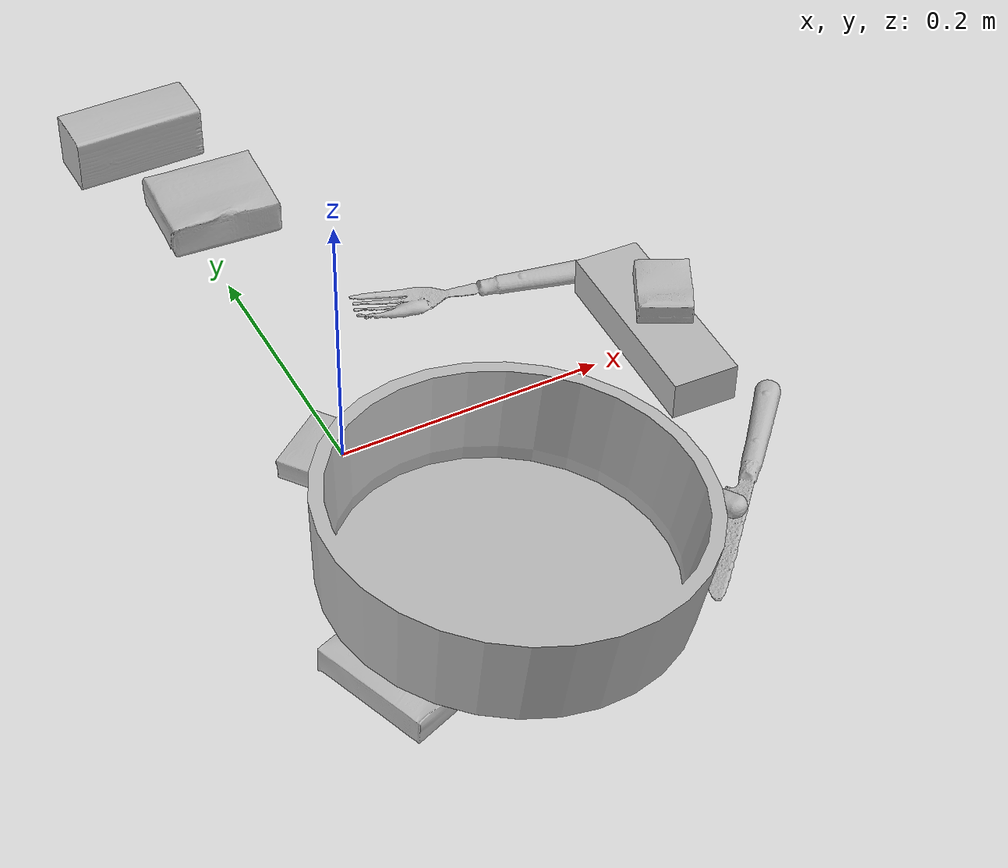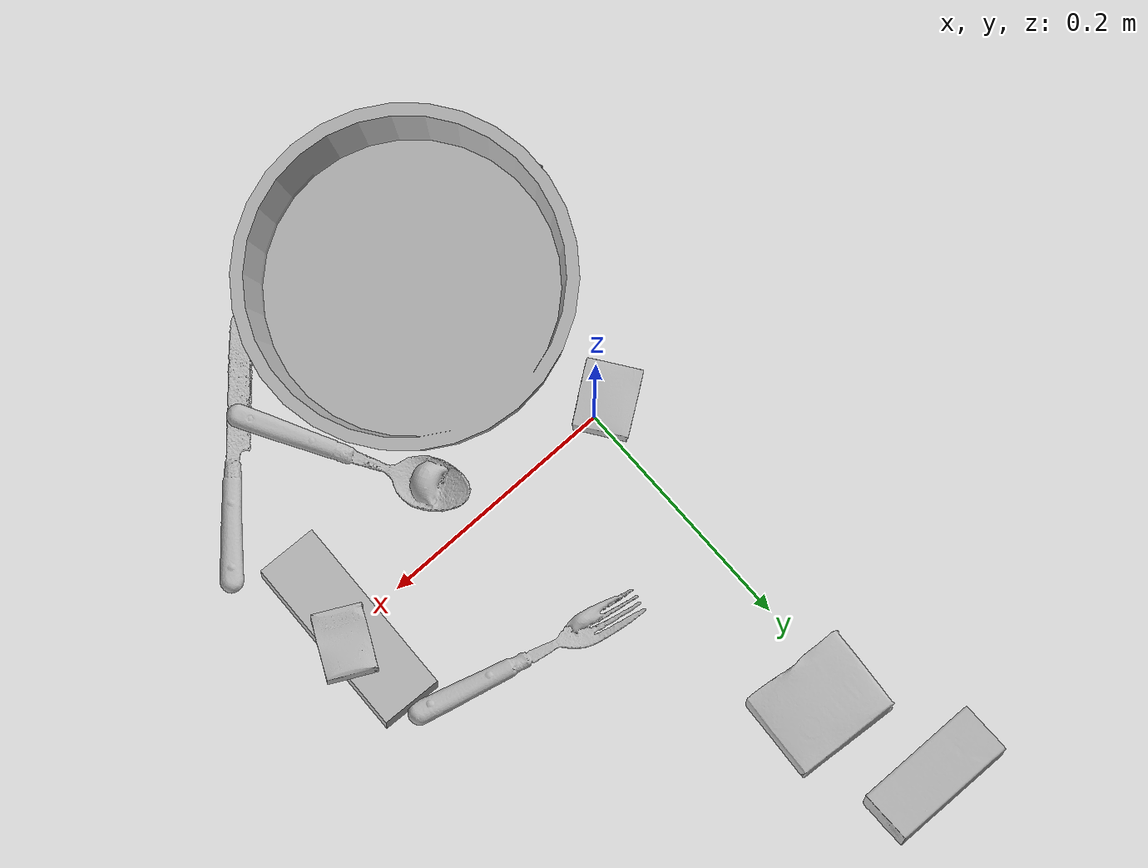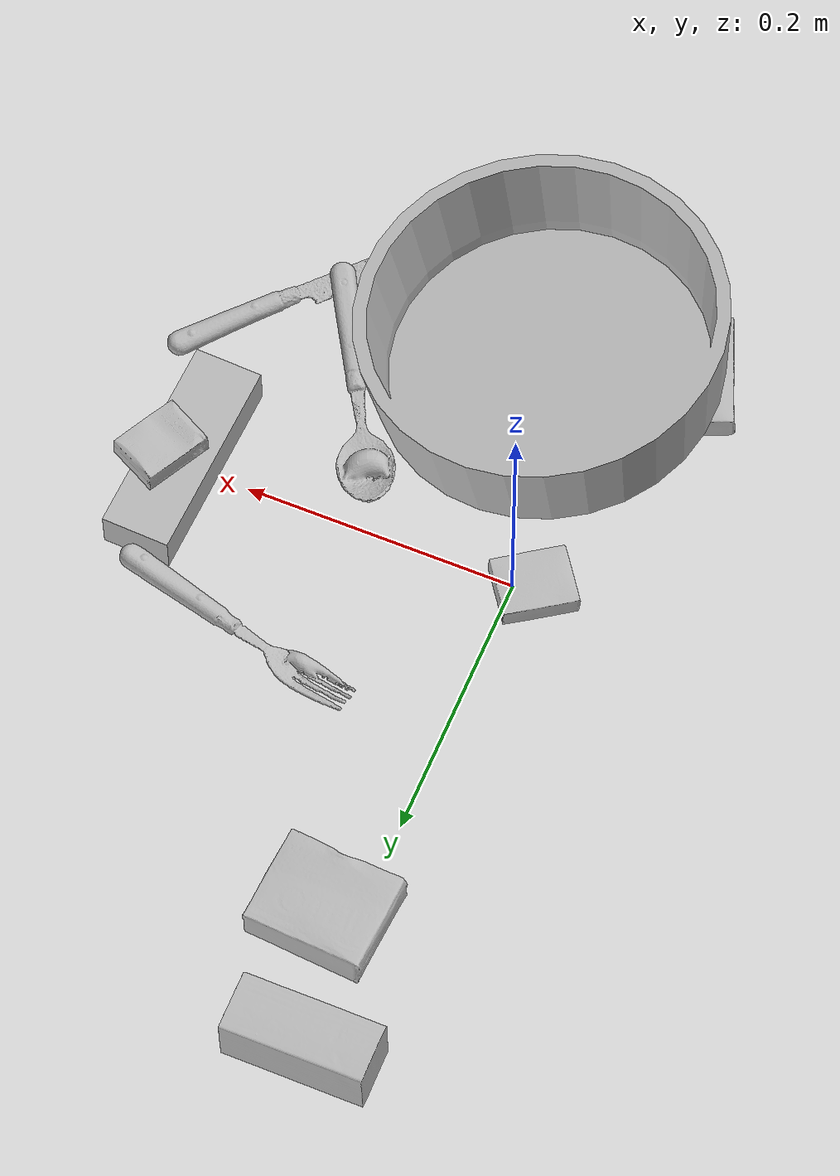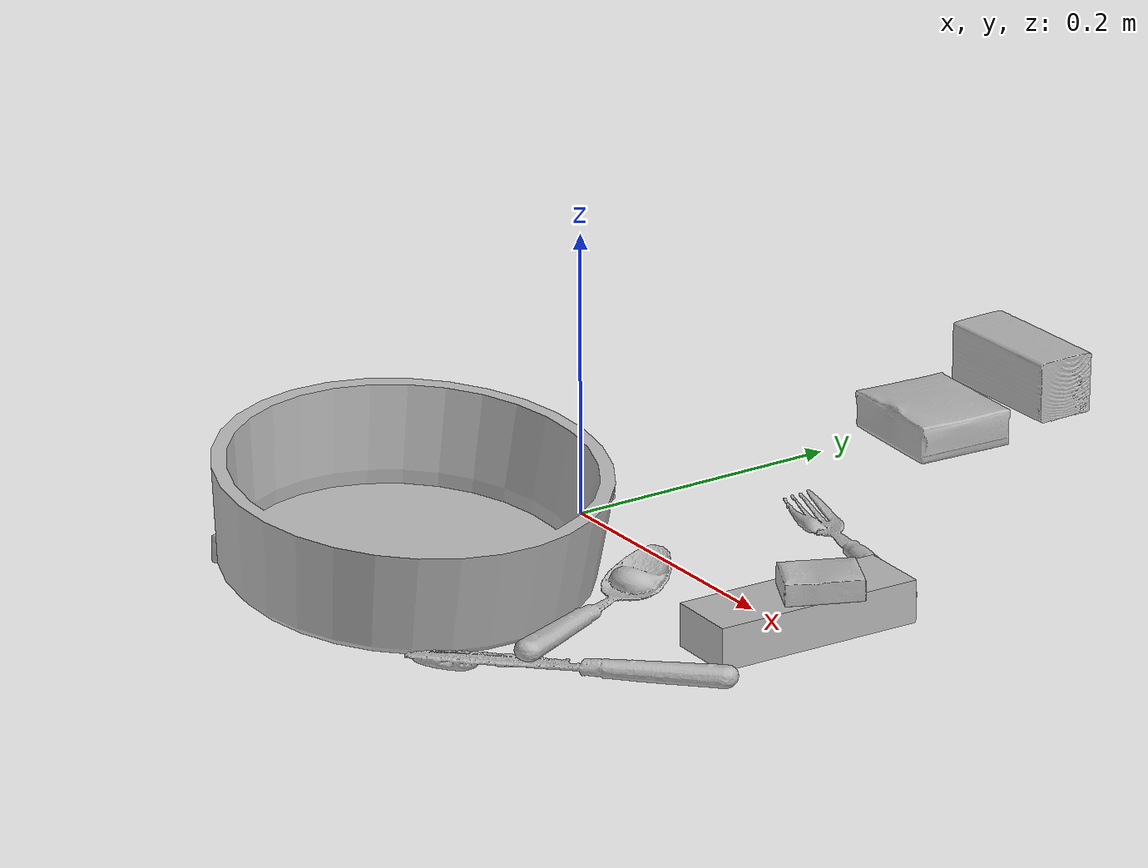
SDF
<sdf version="1.4">
  <world name="default">
    <light name="light1" type="point">
      <pose>0 0 1 0 0 0</pose>
      <diffuse>3 3 3 1</diffuse>
      <specular>3 3 3 1</specular>
    </light>
    <light name="light2" type="point">
      <pose>0 0.5 2 0 0 0</pose>
      <diffuse>1 1 1 1</diffuse>
      <specular>1 1 1 1</specular>
    </light>
    <light name="light3" type="point">
      <pose>0 0.5 2 0 0 0</pose>
      <diffuse>3 3 3 1</diffuse>
      <specular>3 3 3 1</specular>
    </light>
    <scene>
      <ambient>0.7 0.7 0.7</ambient>
    </scene>
    <model name="box11">
      <link name="link_box11">
        <collision name="default">
          <geometry>
            <mesh>
              <uri>model://jenga/collision_meshes/collision.obj</uri>
              <scale>1.0 1.0 1.0</scale>
            </mesh>
          </geometry>
          <surface>
            <friction>
              <ode>
                <mu>0.5</mu>
                <mu2>0.5</mu2>
              </ode>
            </friction>
          <contact>
        <ode>
            <max_vel>0</max_vel>
            <min_depth>0.0001</min_depth>
            <kp>1e8</kp>
        </ode>
    </contact></surface>
        </collision>
        <visual name="default">
          <geometry>
            <mesh>
              <uri>model://jenga/visual_meshes/visual.dae</uri>
              <scale>1.0 1.0 1.0</scale>
            </mesh>
          </geometry>
        </visual>
        <inertial>
          <mass>0.3186844289302826</mass>
          <pose>-2.502855807051674e-07 -0.0001025000965455547 -4.0923401684267446e-05 0.0 -7.34215461761844e-07 0.0</pose>
          <inertia>
            <ixx>8.818771e-05</ixx>
            <iyy>0.0005975576</iyy>
            <izz>0.00063794345</izz>
            <ixy>0</ixy>
            <ixz>0</ixz>
            <iyz>0</iyz>
          </inertia>
        </inertial>
      </link>
      <pose>0.24905210733413696 0.0011151774087920785 0.014999995939433575 4.937265624358394e-09 1.0774490936498493e-08 -1.6072727500807777</pose>
    </model>
    <model name="box12">
      <link name="link_box12">
        <collision name="default">
          <geometry>
            <mesh>
              <uri>model://pudding_box/collision_meshes/collision.obj</uri>
              <scale>0.5 0.5 0.5</scale>
            </mesh>
          </geometry>
          <surface>
            <friction>
              <ode>
                <mu>0.5</mu>
                <mu2>0.5</mu2>
              </ode>
            </friction>
          <contact>
        <ode>
            <max_vel>0</max_vel>
            <min_depth>0.0001</min_depth>
            <kp>1e8</kp>
        </ode>
    </contact></surface>
        </collision>
        <visual name="default">
          <geometry>
            <mesh>
              <uri>model://pudding_box/visual_meshes/visual.dae</uri>
              <scale>0.5 0.5 0.5</scale>
            </mesh>
          </geometry>
        </visual>
        <inertial>
          <mass>0.030172348022460938</mass>
          <pose>0.00024474109522998333 0.000403394311433658 -0.00025944141088984907 0.005213102256408686 -0.006603800110353006 0.02007982142872578</pose>
          <inertia>
            <ixx>8.527073e-06</ixx>
            <iyy>5.7370744e-06</iyy>
            <izz>1.259245e-05</izz>
            <ixy>0</ixy>
            <ixz>0</ixz>
            <iyz>0</iyz>
          </inertia>
        </inertial>
      </link>
      <pose>-0.015305422246456146 -0.0021000169217586517 0.009862905368208885 0.022348446884647353 -0.01139177527521561 -0.9483867239731483</pose>
    </model>
    <model name="box13">
      <link name="link_box13">
        <collision name="default">
          <geometry>
            <mesh>
              <uri>model://sugar_box/collision_meshes/collision.obj</uri>
              <scale>0.5 0.5 0.5</scale>
            </mesh>
          </geometry>
          <surface>
            <friction>
              <ode>
                <mu>0.5</mu>
                <mu2>0.5</mu2>
              </ode>
            </friction>
          <contact>
        <ode>
            <max_vel>0</max_vel>
            <min_depth>0.0001</min_depth>
            <kp>1e8</kp>
        </ode>
    </contact></surface>
        </collision>
        <visual name="default">
          <geometry>
            <mesh>
              <uri>model://sugar_box/visual_meshes/visual.dae</uri>
              <scale>0.5 0.5 0.5</scale>
            </mesh>
          </geometry>
        </visual>
        <inertial>
          <mass>0.12330043315887451</mass>
          <pose>0.0005171863595023751 1.924554817378521e-05 -0.0001818240125430748 -0.0004046263878582698 0.0010506634058618082 0.0026153787888998363</pose>
          <inertia>
            <ixx>2.5683388e-05</ixx>
            <iyy>8.301401e-05</iyy>
            <izz>9.937768e-05</izz>
            <ixy>0</ixy>
            <ixz>0</ixz>
            <iyz>0</iyz>
          </inertia>
        </inertial>
      </link>
      <pose>-0.06148745119571686 -0.20200204849243164 0.01148855872452259 0.022444076820735955 -0.022635997456718952 1.9364854782694723</pose>
    </model>
    <model name="box21">
      <link name="link_box21">
        <collision name="default">
          <geometry>
            <mesh>
              <uri>model://wood_block/collision_meshes/collision.obj</uri>
              <scale>0.5 0.5 0.5</scale>
            </mesh>
          </geometry>
          <surface>
            <friction>
              <ode>
                <mu>0.5</mu>
                <mu2>0.5</mu2>
              </ode>
            </friction>
          <contact>
        <ode>
            <max_vel>0</max_vel>
            <min_depth>0.0001</min_depth>
            <kp>1e8</kp>
        </ode>
    </contact></surface>
        </collision>
        <visual name="default">
          <geometry>
            <mesh>
              <uri>model://wood_block/visual_meshes/visual.dae</uri>
              <scale>0.5 0.5 0.5</scale>
            </mesh>
          </geometry>
        </visual>
        <inertial>
          <mass>0.22575385868549347</mass>
          <pose>-2.9066577553749084e-06 -0.00028540470520965755 0.00013204291462898254 -0.05220771918194674 -0.005192696213783058 -0.006861377697513623</pose>
          <inertia>
            <ixx>7.552322e-05</ixx>
            <iyy>0.00023857782</iyy>
            <izz>0.00023768542</izz>
            <ixy>0</ixy>
            <ixz>0</ixz>
            <iyz>0</iyz>
          </inertia>
        </inertial>
      </link>
      <pose>-0.005288616754114628 0.3779703974723816 0.022629259154200554 -0.005208308156809217 0.005718700677288475 0.005151997475310984</pose>
    </model>
    <model name="box22">
      <link name="link_box22">
        <collision name="default">
          <geometry>
            <mesh>
              <uri>model://cracker_box/collision_meshes/collision.obj</uri>
              <scale>0.25 0.25 0.25</scale>
            </mesh>
          </geometry>
          <surface>
            <friction>
              <ode>
                <mu>0.5</mu>
                <mu2>0.5</mu2>
              </ode>
            </friction>
          <contact>
        <ode>
            <max_vel>0</max_vel>
            <min_depth>0.0001</min_depth>
            <kp>1e8</kp>
        </ode>
    </contact></surface>
        </collision>
        <visual name="default">
          <geometry>
            <mesh>
              <uri>model://cracker_box/visual_meshes/visual.dae</uri>
              <scale>0.25 0.25 0.25</scale>
            </mesh>
          </geometry>
        </visual>
        <inertial>
          <mass>0.02141544781625271</mass>
          <pose>0.0002366038243053481 6.358561950037256e-05 -0.00042573839891701937 -0.000316207804917531 -0.011106489600095467 0.0025467954686493135</pose>
          <inertia>
            <ixx>3.4044588e-06</ixx>
            <iyy>5.62143e-06</iyy>
            <izz>8.022297e-06</izz>
            <ixy>0</ixy>
            <ixz>0</ixz>
            <iyz>0</iyz>
          </inertia>
        </inertial>
      </link>
      <pose>0.2608644962310791 0.010041581466794014 0.03912044316530228 -0.011788253881518829 -0.007367315863354149 1.0959896697169151</pose>
    </model>
    <model name="box23">
      <link name="link_box23">
        <collision name="default">
          <geometry>
            <mesh>
              <uri>model://gelatin_box/collision_meshes/collision.obj</uri>
              <scale>1.0 1.0 1.0</scale>
            </mesh>
          </geometry>
          <surface>
            <friction>
              <ode>
                <mu>0.5</mu>
                <mu2>0.5</mu2>
              </ode>
            </friction>
          <contact>
        <ode>
            <max_vel>0</max_vel>
            <min_depth>0.0001</min_depth>
            <kp>1e8</kp>
        </ode>
    </contact></surface>
        </collision>
        <visual name="default">
          <geometry>
            <mesh>
              <uri>model://gelatin_box/visual_meshes/visual.dae</uri>
              <scale>1.0 1.0 1.0</scale>
            </mesh>
          </geometry>
        </visual>
        <inertial>
          <mass>0.2518538236618042</mass>
          <pose>0.00043196187471039593 0.00011156871914863586 -0.0003640321083366871 -0.001050372077086074 -0.00475581729336075 0.01644055760821351</pose>
          <inertia>
            <ixx>0.00017778824</ixx>
            <iyy>0.00012699323</iyy>
            <izz>0.00027063338</izz>
            <ixy>0</ixy>
            <ixz>0</ixz>
            <iyz>0</iyz>
          </inertia>
        </inertial>
      </link>
      <pose>0.02125181443989277 0.2797294557094574 0.015168314799666405 0.0055963856060643755 -0.00730352963245708 -1.6422475623809576</pose>
    </model>
    <model name="plate1">
      <link name="link_plate1">
        <collision name="default">
          <geometry>
            <mesh>
              <uri>model://pan_tefal/collision_meshes/collision.obj</uri>
              <scale>1.0 1.0 1.0</scale>
            </mesh>
          </geometry>
          <surface>
            <friction>
              <ode>
                <mu>0.5</mu>
                <mu2>0.5</mu2>
              </ode>
            </friction>
          <contact>
        <ode>
            <max_vel>0</max_vel>
            <min_depth>0.0001</min_depth>
            <kp>1e8</kp>
        </ode>
    </contact></surface>
        </collision>
        <visual name="default">
          <geometry>
            <mesh>
              <uri>model://pan_tefal/visual_meshes/visual.dae</uri>
              <scale>1.0 1.0 1.0</scale>
            </mesh>
          </geometry>
        </visual>
        <inertial>
          <mass>1.2783581018447876</mass>
          <pose>-0.0001800234749680385 3.279297015978955e-05 -0.008514934219419956 0.0008190282028794127 -0.0003301398069692291 -0.33185125702417473</pose>
          <inertia>
            <ixx>0.0088244425</ixx>
            <iyy>0.008881334</iyy>
            <izz>0.016244099</izz>
            <ixy>0</ixy>
            <ixz>0</ixz>
            <iyz>0</iyz>
          </inertia>
        </inertial>
      </link>
      <pose>0.0430201031267643 -0.16411380469799042 0.05003570392727852 0.054651853183756184 0.089881159886013 0.7172165967792349</pose>
    </model>
    <model name="silverware1">
      <link name="link_silverware1">
        <collision name="default">
          <geometry>
            <mesh>
              <uri>model://knife/collision_meshes/collision.obj</uri>
              <scale>1.0 1.0 1.0</scale>
            </mesh>
          </geometry>
          <surface>
            <friction>
              <ode>
                <mu>0.5</mu>
                <mu2>0.5</mu2>
              </ode>
            </friction>
          <contact>
        <ode>
            <max_vel>0</max_vel>
            <min_depth>0.0001</min_depth>
            <kp>1e8</kp>
        </ode>
    </contact></surface>
        </collision>
        <visual name="default">
          <geometry>
            <mesh>
              <uri>model://knife/visual_meshes/visual.dae</uri>
              <scale>1.0 1.0 1.0</scale>
            </mesh>
          </geometry>
        </visual>
        <inertial>
          <mass>0.028752580285072327</mass>
          <pose>-0.023785240948200226 0.0015275123296305537 5.0620223191799596e-05 0.07306965696526056 0.017248417457013686 -0.00740982691157592</pose>
          <inertia>
            <ixx>8.161146e-07</ixx>
            <iyy>0.000110462766</iyy>
            <izz>0.00011072555</izz>
            <ixy>0</ixy>
            <ixz>0</ixz>
            <iyz>0</iyz>
          </inertia>
        </inertial>
      </link>
      <pose>0.22343234717845917 -0.15833896398544312 0.00793062336742878 0.04666584872763559 -0.014149279874984296 -2.316951144631148</pose>
    </model>
    <model name="silverware2">
      <link name="link_silverware2">
        <collision name="default">
          <geometry>
            <mesh>
              <uri>model://spoon/collision_meshes/collision.obj</uri>
              <scale>1.0 1.0 1.0</scale>
            </mesh>
          </geometry>
          <surface>
            <friction>
              <ode>
                <mu>0.5</mu>
                <mu2>0.5</mu2>
              </ode>
            </friction>
          <contact>
        <ode>
            <max_vel>0</max_vel>
            <min_depth>0.0001</min_depth>
            <kp>1e8</kp>
        </ode>
    </contact></surface>
        </collision>
        <visual name="default">
          <geometry>
            <mesh>
              <uri>model://spoon/visual_meshes/visual.dae</uri>
              <scale>1.0 1.0 1.0</scale>
            </mesh>
          </geometry>
        </visual>
        <inertial>
          <mass>0.03275385871529579</mass>
          <pose>-0.005526320543140173 -0.0016034176805987954 -0.0007271653157658875 0.03521620701241808 -0.03906583474323888 0.006150609342160928</pose>
          <inertia>
            <ixx>1.8218228e-06</ixx>
            <iyy>0.00012462735</iyy>
            <izz>0.0001255258</izz>
            <ixy>0</ixy>
            <ixz>0</ixz>
            <iyz>0</iyz>
          </inertia>
        </inertial>
      </link>
      <pose>0.15868248045444489 -0.10079006850719452 0.011663461104035378 0.020907009046316965 0.08337936656262109 2.0776165744026907</pose>
    </model>
    <model name="silverware3">
      <link name="link_silverware3">
        <collision name="default">
          <geometry>
            <mesh>
              <uri>model://fork/collision_meshes/collision.obj</uri>
              <scale>1.0 1.0 1.0</scale>
            </mesh>
          </geometry>
          <surface>
            <friction>
              <ode>
                <mu>0.5</mu>
                <mu2>0.5</mu2>
              </ode>
            </friction>
          <contact>
        <ode>
            <max_vel>0</max_vel>
            <min_depth>0.0001</min_depth>
            <kp>1e8</kp>
        </ode>
    </contact></surface>
        </collision>
        <visual name="default">
          <geometry>
            <mesh>
              <uri>model://fork/visual_meshes/visual.dae</uri>
              <scale>1.0 1.0 1.0</scale>
            </mesh>
          </geometry>
        </visual>
        <inertial>
          <mass>0.015051598660647869</mass>
          <pose>-0.029570037499070168 0.00046588244731538 0.0003218861238565296 -0.013550825752082697 -0.010977832944741694 0.014453903400543814</pose>
          <inertia>
            <ixx>5.2764364e-07</ixx>
            <iyy>3.9295395e-05</iyy>
            <izz>3.953141e-05</izz>
            <ixy>0</ixy>
            <ixz>0</ixz>
            <iyz>0</iyz>
          </inertia>
        </inertial>
      </link>
      <pose>0.16439887881278992 0.10613705962896347 0.005460473708808422 -0.09342218369388518 0.0387270415787929 2.8897148708085405</pose>
    </model>
  <physics type="ode">
      <max_contacts>50</max_contacts>
      <ode>
        <solver>
          <type>quick</type>
          <iters>75</iters>
        </solver>
        <constraints>
          <contact_max_correcting_vel>0</contact_max_correcting_vel>
          <contact_surface_layer>0</contact_surface_layer>
        </constraints>
      </ode>
    </physics></world>
</sdf>
